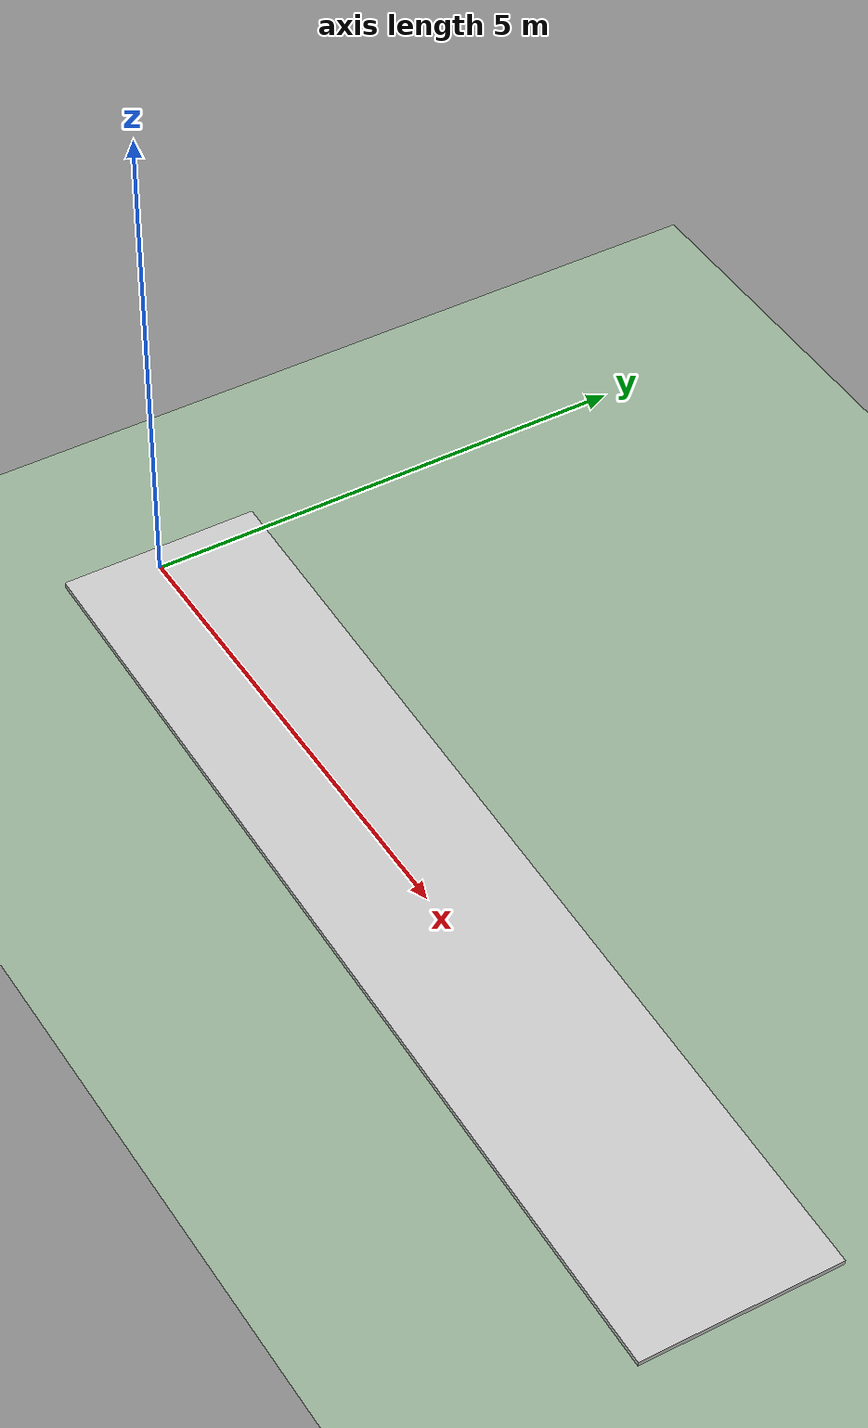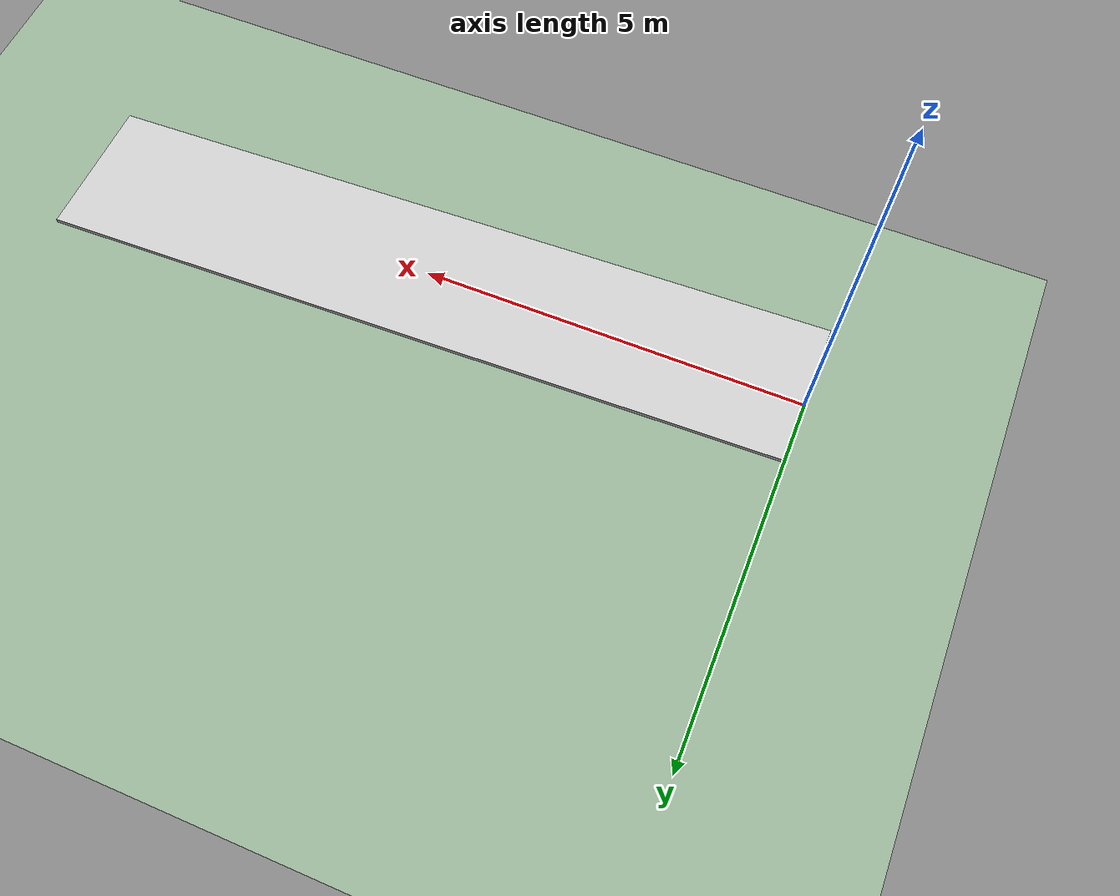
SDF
<?xml version="1.0"?>

<sdf version="1.9">
  <world name="slope_world">

    <physics name="1ms" type="dart">
      <max_step_size>0.001</max_step_size>
      <real_time_factor>1.0</real_time_factor>
    </physics>

    <gravity>0 0 -9.81</gravity>

    <plugin filename="gz-sim-physics-system" name="gz::sim::systems::Physics"/>
    <plugin filename="gz-sim-scene-broadcaster-system" name="gz::sim::systems::SceneBroadcaster"/>
    <plugin filename="gz-sim-contact-system" name="gz::sim::systems::Contact"/>
    <plugin filename="gz-sim-user-commands-system" name="gz::sim::systems::UserCommands"/>

    <light type="directional" name="sun">
      <pose>0 0 10 0 0 0</pose>
      <diffuse>1 1 1 1</diffuse>
      <specular>0.5 0.5 0.5 1</specular>
      <direction>-0.5 0.1 -0.9</direction>
      <cast_shadows>true</cast_shadows>
    </light>

    <model name="slope">
      <static>true</static>
      <!-- 3.50 deg downward slope in +X direction -->
      <pose>5 0 0 0 0.04974 0</pose>
      <link name="slope_link">
        <collision name="collision">
          <geometry>
            <box>
              <size>10 2 0.05</size>
            </box>
          </geometry>
          <surface>
            <friction>
              <ode>
                <mu>1.0</mu>
                <mu2>1.0</mu2>
              </ode>
            </friction>
            <contact>
              <ode>
                <kp>1000000.0</kp>
                <kd>100.0</kd>
                <max_vel>0.1</max_vel>
                <min_depth>0.001</min_depth>
              </ode>
            </contact>
          </surface>
        </collision>
        <visual name="visual">
          <geometry>
            <box>
              <size>10 2 0.05</size>
            </box>
          </geometry>
          <material>
            <ambient>0.7 0.7 0.7 1</ambient>
            <diffuse>0.8 0.8 0.8 1</diffuse>
          </material>
        </visual>
      </link>
    </model>

    <model name="ground_plane">
      <static>true</static>
      <link name="link">
        <collision name="collision">
          <geometry>
            <plane>
              <normal>0 0 1</normal>
              <size>100 100</size>
            </plane>
          </geometry>
          <surface>
            <friction>
              <ode>
                <mu>1.0</mu>
                <mu2>1.0</mu2>
              </ode>
            </friction>
          </surface>
        </collision>
        <visual name="visual">
          <geometry>
            <plane>
              <normal>0 0 1</normal>
              <size>100 100</size>
            </plane>
          </geometry>
          <material>
            <ambient>0.5 0.6 0.5 1</ambient>
            <diffuse>0.6 0.7 0.6 1</diffuse>
          </material>
        </visual>
      </link>
      <pose>0 0 -0.4 0 0 0</pose>
    </model>

    <gui fullscreen="true">
      <plugin filename="MinimalScene" name="3D View">
        <gz-gui>
          <title>3D View</title>
          <property type="bool" key="showTitleBar">false</property>
        </gz-gui>
        <engine>ogre2</engine>
        <scene>scene</scene>
        <ambient_light>0.4 0.4 0.4</ambient_light>
        <background_color>0.8 0.8 0.8</background_color>
        <camera_pose>-2 0 2 0 0.5 0</camera_pose>
      </plugin>
      <plugin filename="GzSceneManager" name="Scene Manager"/>
      <plugin filename="InteractiveViewControl" name="Interactive View Control"/>
      <plugin filename="WorldControl" name="World control">
        <gz-gui>
          <title>World control</title>
          <property type="bool" key="showTitleBar">false</property>
          <property type="bool" key="resizable">false</property>
          <property type="double" key="z">1</property>
          <property type="string" key="state">floating</property>
          <anchors target="3D View">
            <line own="left" target="left"/>
            <line own="bottom" target="bottom"/>
          </anchors>
        </gz-gui>
        <play_pause>true</play_pause>
        <step>true</step>
        <start_paused>true</start_paused>
      </plugin>
      <plugin filename="EntityTree" name="Entity tree"/>
    </gui>

  </world>
</sdf>
